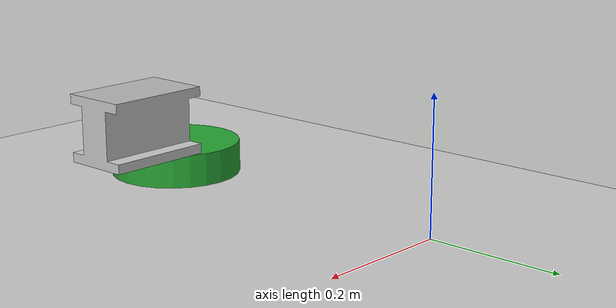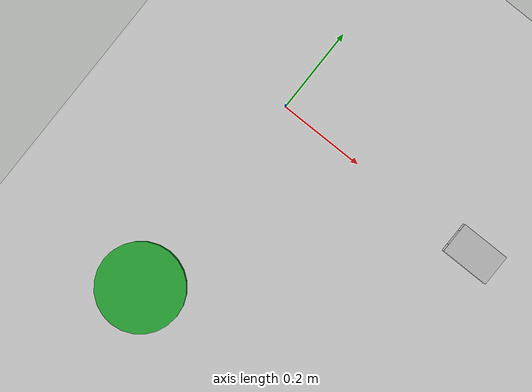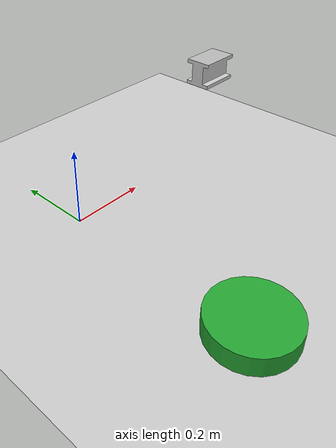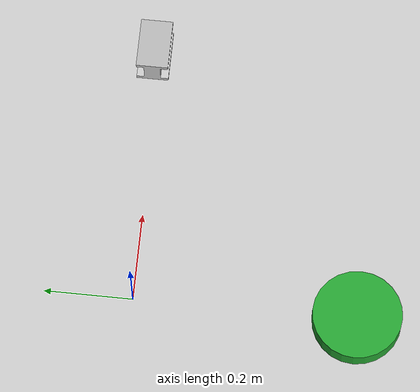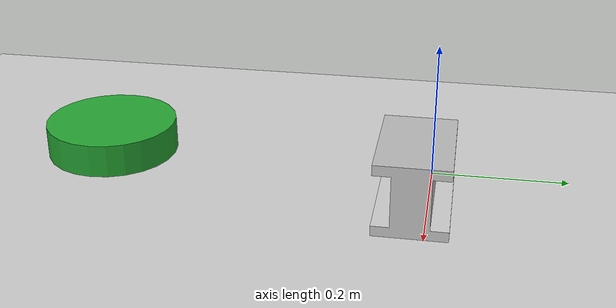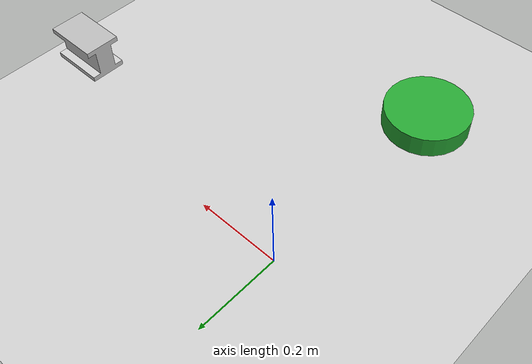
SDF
<?xml version="1.0" ?>
<sdf version="1.5">
  <world name="robomaster_rale">
    <light type="directional" name="my_light">
      <pose>0 0 10 0 0 0</pose>
    </light>
    <include>
      <uri>model://sun</uri>
    </include>
    <include>
      <uri>model://ground_plane</uri>
    </include>
    <include>
      <name>aruco_i_block</name>
      <uri>model://aruco_block_long</uri>
      <static>false</static>
      <pose>0.5 0 0.25 0 0 0</pose>
    </include>
    <model name='unit_cylinder'>
      <pose>0. -0.5 0.025 0 -0 0</pose>
      <static>true</static>
      <link name='link'>
        <inertial>
          <mass>1</mass>
          <inertia>
            <ixx>0.145833</ixx>
            <ixy>0</ixy>
            <ixz>0</ixz>
            <iyy>0.145833</iyy>
            <iyz>0</iyz>
            <izz>0.125</izz>
          </inertia>
          <pose>0 0 0 0 0 0</pose>
        </inertial>
        <collision name='collision'>
          <geometry>
            <cylinder>
              <radius>0.1</radius>
              <length>0.05</length>
            </cylinder>
          </geometry>
          <max_contacts>10</max_contacts>
          <surface>
            <contact>
              <ode/>
            </contact>
            <bounce/>
            <friction>
              <torsional>
                <ode/>
              </torsional>
              <ode/>
            </friction>
          </surface>
        </collision>
        <visual name='visual'>
          <geometry>
            <cylinder>
              <radius>0.1</radius>
              <length>0.05</length>
            </cylinder>
          </geometry>
          <material>
            <script>
              <name>Gazebo/Green</name>
              <uri>file://media/materials/scripts/gazebo.material</uri>
            </script>
          </material>
        </visual>
      </link>
    </model>
  </world>
</sdf>

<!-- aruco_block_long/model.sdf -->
<sdf version="1.5">
  <model name="aruco_block_long">
    <static>false</static>
    <link name="link">
      <inertial>
        <mass>0.349</mass>
        <inertia>
          <ixx>1.45e-4</ixx>
          <ixy>0.0</ixy>
          <ixz>0.0</ixz>
          <iyy>1.45e-4</iyy>
          <iyz>0.0</iyz>
          <izz>1.45e-4</izz>
        </inertia>
      </inertial>
      <collision name="collision">
          <geometry>
            <box>
              <size>0.065 0.065 0.065</size> <!-- the collision section was replaced by a simple cube shape -->
            </box>
          </geometry>
          <surface>
            <contact>
              <ode/>
            </contact>
            <bounce/>
            <friction>
              <torsional>
                <ode/>
              </torsional>
              <ode/>
            </friction>
          </surface>
          <max_contacts>10</max_contacts>
      </collision>
      <visual name="visual">
        <geometry>
          <mesh>
            <scale>1 1 1</scale>
            <uri>model://aruco_block_long/meshes/block_long.dae</uri>
          </mesh>
        </geometry>
      </visual>
    </link>
  </model>
</sdf>
